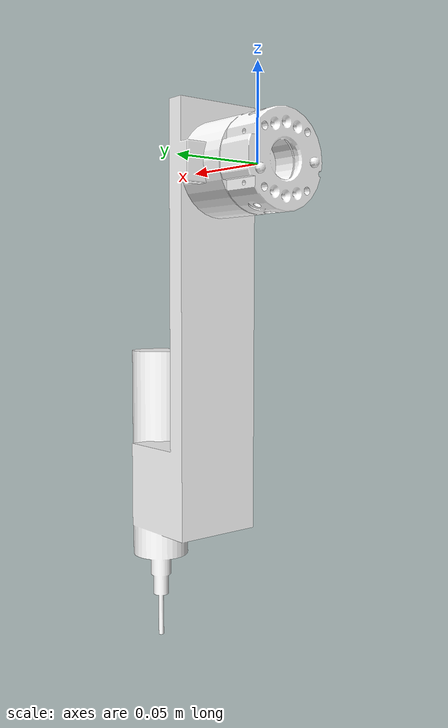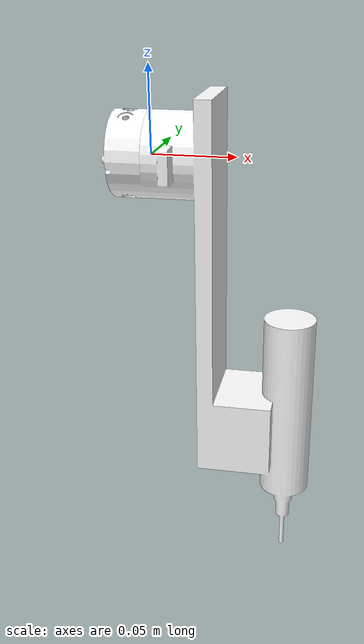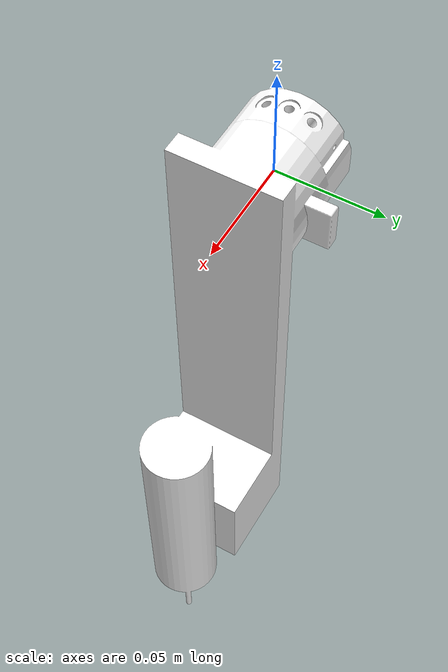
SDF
<?xml version="1.0" ?>
<sdf version="1.6">
  <model name="dispenser_endtool">
    <link name="link">
      <inertial>
        <mass>1</mass>
      </inertial>
      <collision name="collision">
        <geometry>
          <mesh>
            <uri>model://endtools/dispensing/meshes/endtool_collision.stl</uri>
            <scale>1 1 1</scale>
          </mesh>
        </geometry>
      </collision>
      <visual name="visual">
	    <geometry>
          <mesh>
            <uri>model://endtools/dispensing/meshes/endtool_visual.dae</uri>
          </mesh>
        </geometry>
        <meta>
            <layer> 1 </layer>
        </meta>
      </visual>
    </link>
  </model>
</sdf>
